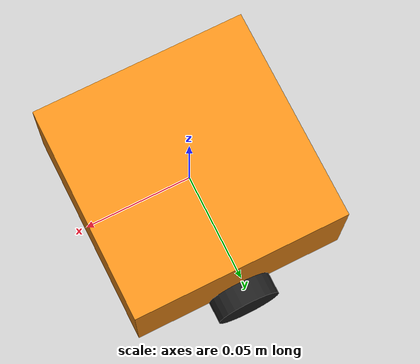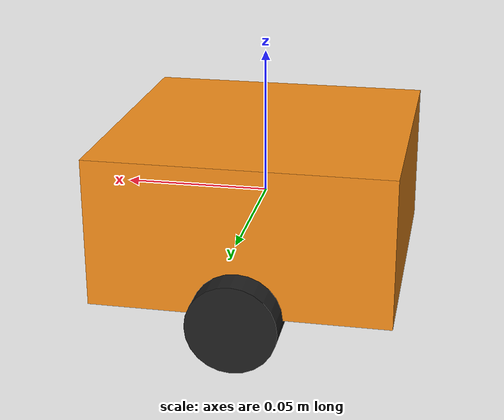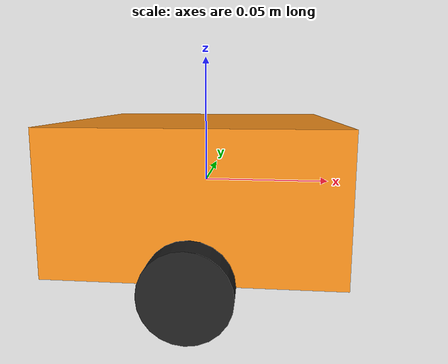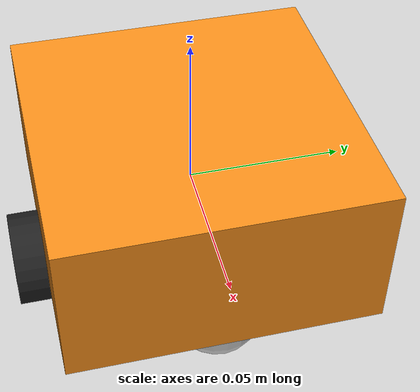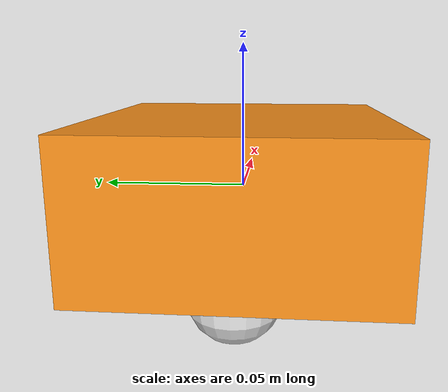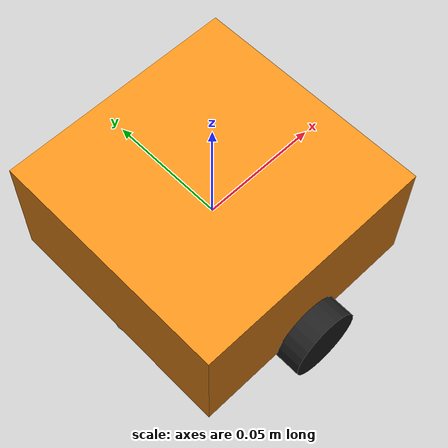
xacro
<?xml version="1.0"?>
<!-- Basic differential drive mobile base -->
<!--
Copied and modified from ROS1 example -
https://github.com/ros-simulation/gazebo_ros_demos/blob/kinetic-devel/diffbot_description/urdf/diffbot.xacro
-->
<robot name="diffdrive_robot" xmlns:xacro="http://ros.org/wiki/xacro">
  <xacro:arg name="use_sim" default="false" />

  <!-- Enable setting arguments from the launch file -->
  <xacro:arg name="use_fake_hardware" default="false" />
  <xacro:arg name="fake_sensor_commands" default="false" />
  <xacro:arg name="prefix" default="" />

  <xacro:include filename="$(find diffbot_description)/urdf/diffbot.urdf.xacro" />

  <!-- Import all Gazebo-customization elements, including Gazebo colors -->
  <xacro:include filename="$(find diffbot_description)/gazebo/diffbot.gazebo.xacro" />

  <!-- Import Rviz colors -->
  <xacro:include filename="$(find diffbot_description)/gazebo/diffbot.materials.xacro" />

  <!-- Import diffbot ros2_control description -->
  <xacro:include filename="$(find diffbot_description)/ros2_control/diffbot_system.ros2_control.xacro" />

  <xacro:diffbot prefix="$(arg prefix)" />

  <xacro:diffbot_gazebo prefix="$(arg prefix)" />

  <xacro:diffbot_system name="DiffBotSystem" prefix="$(arg prefix)" use_fake_hardware="$(arg use_fake_hardware)" fake_sensor_commands="$(arg fake_sensor_commands)" />

</robot>

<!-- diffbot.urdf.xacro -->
<robot name="diffdrive_robot" xmlns:xacro="http://ros.org/wiki/xacro">
  <xacro:macro name="diffbot" params="prefix">

    <!-- Constants for robot dimensions -->
    <xacro:property name="PI" value="3.1415926535897931" />
    <xacro:property name="base_mass" value="0.3" /> <!-- arbitrary value for base mass -->
    <xacro:property name="base_width" value="0.1" />
    <xacro:property name="base_length" value="0.1" />
    <xacro:property name="base_height" value="0.05" />
    <xacro:property name="wheel_mass" value="0.3" /> <!-- arbitrary value for wheel mass -->
    <xacro:property name="wheel_len" value="0.020" />
    <xacro:property name="wheel_radius" value="0.015" />
    <xacro:property name="caster_wheel_mass" value="0.1" /> <!-- arbitrary value for caster wheel mass -->
    <xacro:property name="caster_wheel_radius" value="0.015" />
    <xacro:property name="z_offset" value="-${base_height/2}" /> <!-- Space btw top of beam and the each joint -->
    <xacro:property name="wheel_zoff" value="0.01"/>
    <!-- Define some commonly used intertial properties  -->
    <xacro:macro name="box_inertia" params="m w h d">
      <inertial>
        <origin xyz="0 0 0" rpy="${pi/2} 0 ${pi/2}"/>
        <mass value="${m}"/>
        <inertia ixx="${(m/12) * (h*h + d*d)}" ixy="0.0" ixz="0.0" iyy="${(m/12) * (w*w + d*d)}" iyz="0.0" izz="${(m/12) * (w*w + h*h)}"/>
      </inertial>
    </xacro:macro>

    <!-- Base Link -->
    <link name="${prefix}base_link">
      <collision>
        <origin xyz="0 0 0" rpy="0 0 0" />
        <geometry>
          <box size="${base_width} ${base_length} ${base_height}" />
        </geometry>
      </collision>

      <visual>
        <origin xyz="0 0 0" rpy="0 0 0" />
        <geometry>
          <box size="${base_width} ${base_length} ${base_height}" />
        </geometry>
        <material name="orange" />
      </visual>

      <inertial>
        <origin xyz="0 0 0" rpy="0 0 0" />
        <mass value="${base_mass}" />
        <inertia ixx="${base_mass / 12.0 * (base_length*base_length + base_height*base_height)}" ixy="0.0" ixz="0.0" iyy="${base_mass / 12.0 * (base_height*base_height + base_width*base_width)}" iyz="0.0" izz="${base_mass / 12.0 * (base_width*base_width + base_length*base_length)}" />
      </inertial>
    </link>

    <!-- Robot Footprint -->
    <link name="${prefix}base_footprint">
  	  <xacro:box_inertia m="0" w="0" d="0" h="0"/>
    </link>

    <joint name="${prefix}base_joint" type="fixed">
      <parent link="${prefix}base_link"/>
      <child link="${prefix}base_footprint"/>
      <origin xyz="0.0 0.0 ${-(wheel_radius+wheel_zoff)}" rpy="0 0 0"/>
    </joint>

    <joint name="${prefix}left_wheel_joint" type="continuous">
      <parent link="${prefix}base_link" />
      <child link="${prefix}left_wheel" />
      <origin xyz="0 -${base_width/2} ${z_offset}" rpy="0 0 0" />
      <axis xyz="0 1 0" />
      <dynamics damping="0.2" />
    </joint>

    <!-- left wheel Link -->
    <link name="${prefix}left_wheel">
      <collision>
        <origin xyz="0 0 0" rpy="${PI/2} 0 0" />
        <geometry>
          <cylinder length="${wheel_len}" radius="${wheel_radius}" />
        </geometry>
      </collision>

      <visual>
        <origin xyz="0 0 0" rpy="${PI/2} 0 0" />
        <geometry>
          <cylinder length="${wheel_len}" radius="${wheel_radius}" />
        </geometry>
        <material name="black" />
      </visual>

      <inertial>
        <origin xyz="0 0 0" rpy="${PI/2} 0 0" />
        <mass value="${wheel_mass}" />
        <inertia ixx="${wheel_mass / 12.0 * (3*wheel_radius + wheel_len*wheel_len)}" ixy="0.0" ixz="0.0" iyy="${wheel_mass / 12.0 * wheel_radius*wheel_radius}" iyz="0.0" izz="${wheel_mass / 12.0 * wheel_radius*wheel_radius}" />
      </inertial>
    </link>

    <joint name="${prefix}right_wheel_joint" type="continuous">
      <parent link="${prefix}base_link" />
      <child link="${prefix}right_wheel" />
      <origin xyz="0 ${base_width/2} ${z_offset}" rpy="0 0 0" />
      <axis xyz="0 1 0" />
      <dynamics damping="0.2" />
    </joint>

    <!-- right wheel Link -->
    <link name="${prefix}right_wheel">
      <collision>
        <origin xyz="0 0 0" rpy="${PI/2} 0 0" />
        <geometry>
          <cylinder length="${wheel_len}" radius="${wheel_radius}" />
        </geometry>
      </collision>

      <visual>
        <origin xyz="0 0 0" rpy="${PI/2} 0 0" />
        <geometry>
          <cylinder length="${wheel_len}" radius="${wheel_radius}" />
        </geometry>
        <material name="black" />
      </visual>

      <inertial>
        <origin xyz="0 0 0" rpy="${PI/2} 0 0" />
        <mass value="${wheel_mass}" />
        <inertia ixx="${wheel_mass / 12.0 * (3*wheel_radius + wheel_len*wheel_len)}" ixy="0.0" ixz="0.0" iyy="${wheel_mass / 12.0 * wheel_radius*wheel_radius}" iyz="0.0" izz="${wheel_mass / 12.0 * wheel_radius*wheel_radius}" />
      </inertial>
    </link>

    <joint name="${prefix}caster_frontal_wheel_joint" type="fixed">
      <parent link="${prefix}base_link" />
      <child link="${prefix}caster_frontal_wheel" />
      <origin xyz="${base_width/2 - caster_wheel_radius} 0 ${z_offset}" rpy="0 0 0" />
    </joint>

    <!-- caster frontal wheel Link -->
    <link name="${prefix}caster_frontal_wheel">
      <collision>
        <origin xyz="0 0 0" rpy="0 0 0" />
        <geometry>
          <sphere radius="${caster_wheel_radius}" />
        </geometry>
      </collision>

      <visual>
        <origin xyz="0 0 0" rpy="0 0 0" />
        <geometry>
          <sphere radius="${caster_wheel_radius}" />
        </geometry>
        <material name="white" />
      </visual>

      <inertial>
        <origin xyz="0 0 0" rpy="0 0 0" />
        <mass value="${caster_wheel_mass}" />
        <inertia ixx="${caster_wheel_mass * 0.4 * (caster_wheel_radius * caster_wheel_radius)}" ixy="0.0" ixz="0.0" iyy="${caster_wheel_mass * 0.4 * (caster_wheel_radius * caster_wheel_radius)}" iyz="0.0" izz="${caster_wheel_mass * 0.4 * (caster_wheel_radius * caster_wheel_radius)}" />
      </inertial>
    </link>

    <joint name="${prefix}caster_rear_wheel_joint" type="fixed">
      <parent link="${prefix}base_link" />
      <child link="${prefix}caster_rear_wheel" />
      <origin xyz="${-base_width/2 + caster_wheel_radius} 0 ${z_offset}" rpy="0 0 0" />
    </joint>

    <!-- caster rear wheel Link -->
    <link name="${prefix}caster_rear_wheel">
      <collision>
        <origin xyz="0 0 0" rpy="0 0 0" />
        <geometry>
          <sphere radius="${caster_wheel_radius}" />
        </geometry>
      </collision>

      <visual>
        <origin xyz="0 0 0" rpy="0 0 0" />
        <geometry>
          <sphere radius="${caster_wheel_radius}" />
        </geometry>
        <material name="white" />
      </visual>

      <inertial>
        <origin xyz="0 0 0" rpy="0 0 0" />
        <mass value="${caster_wheel_mass}" />
        <inertia ixx="${caster_wheel_mass * 0.4 * (caster_wheel_radius * caster_wheel_radius)}" ixy="0.0" ixz="0.0" iyy="${caster_wheel_mass * 0.4 * (caster_wheel_radius * caster_wheel_radius)}" iyz="0.0" izz="${caster_wheel_mass * 0.4 * (caster_wheel_radius * caster_wheel_radius)}" />
      </inertial>
    </link>

  </xacro:macro>
</robot>
